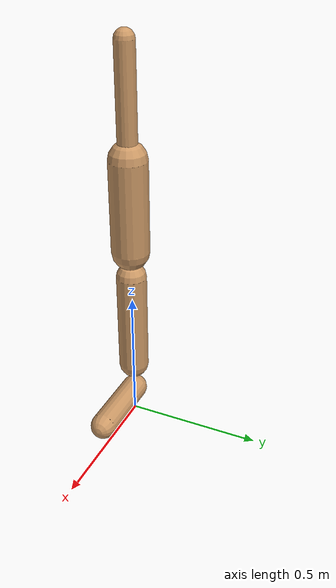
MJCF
<mujoco model="walker2d">
  <compiler angle="degree" coordinate="global" inertiafromgeom="true" />
  <default>
    <joint armature="0.01" damping=".1" limited="true" />
    <geom conaffinity="0" condim="3" contype="1" density="1000" friction="0.8 .1 .1" rgba="0.8 0.6 .4 1" />
  </default>
  <option integrator="RK4" timestep="0.002" />
  <worldbody>

    <body name="torso" pos="0 0 -0.22423716229651497">
      <joint armature="0" axis="1 0 0" damping="0" limited="false" name="ignorex" pos="0 0 0" stiffness="0" type="slide" />
      <joint armature="0" axis="0 0 1" damping="0" limited="false" name="ignorez" pos="0 0 0" ref="1.25" stiffness="0" type="slide" />
      <joint armature="0" axis="0 1 0" damping="0" limited="false" name="ignorey" pos="0 0 0" stiffness="0" type="hinge" />
      <geom fromto="0 0 1.45 0 0 1.05" name="torso_geom" size="0.03587772662880603" type="capsule" />
      <body name="thigh">
        <joint axis="0 -1 0" name="thigh_joint" pos="0 0 1.05" range="-150 0" type="hinge" />
        <geom fromto="0.0 0.0 1.05 0.0 0.0 0.706217603193086" name="thigh_geom" size="0.07031376017814335" type="capsule" />
        <body name="leg" pos="0.0 0.0 0.10621760319308604">
          <joint axis="0 -1 0" name="leg_joint" pos="0 0 0.6" range="-150 0" type="hinge" />
          <geom fromto="0.0 0.0 0.6 0.0 0.0 0.21801955910342893" name="leg_geom" size="0.05625100814251468" type="capsule" />
          <body name="foot" pos="0.0 0.0 0.11801955910342893">
            <joint axis="0 -1 0" name="foot_joint" pos="0 0 0.1" range="-45 45" type="hinge" />
            <geom fromto="-0.0 0.0 0.1 0.25656580119582967 0.0 0.1" name="foot_geom" size="0.04793809420828908" type="capsule" />
          </body>
        </body>
      </body>

      <body name="thigh_left">
        <joint axis="0 -1 0" name="thigh_left_joint" pos="0 0 1.05" range="-150 0" type="hinge" />
        <geom fromto="0.0 0.0 1.05 0.0 0.0 0.706217603193086" name="thigh_left_geom" rgba=".7 .3 .6 1" size="0.07031376017814335" type="capsule" />
        <body name="leg_left" pos="0.0 0.0 0.10621760319308604">
          <joint axis="0 -1 0" name="leg_left_joint" pos="0 0 0.6" range="-150 0" type="hinge" />
          <geom fromto="0.0 0.0 0.6 0.0 0.0 0.21801955910342893" name="leg_left_geom" rgba=".7 .3 .6 1" size="0.05625100814251468" type="capsule" />
          <body name="foot_left" pos="0.0 0.0 0.11801955910342893">
            <joint axis="0 -1 0" name="foot_left_joint" pos="0 0 0.1" range="-45 45" type="hinge" />
            <geom fromto="-0.0 0.0 0.1 0.25656580119582967 0.0 0.1" name="foot_left_geom" rgba=".7 .3 .6 1" size="0.04793809420828908" type="capsule" />
          </body>
        </body>
      </body>
    </body>
  </worldbody>
  <actuator>

    <motor ctrllimited="true" ctrlrange="-1.0 1.0" gear="100" joint="thigh_joint" />
    <motor ctrllimited="true" ctrlrange="-1.0 1.0" gear="100" joint="leg_joint" />
    <motor ctrllimited="true" ctrlrange="-1.0 1.0" gear="100" joint="foot_joint" />
    <motor ctrllimited="true" ctrlrange="-1.0 1.0" gear="100" joint="thigh_left_joint" />
    <motor ctrllimited="true" ctrlrange="-1.0 1.0" gear="100" joint="leg_left_joint" />
    <motor ctrllimited="true" ctrlrange="-1.0 1.0" gear="100" joint="foot_left_joint" />

  </actuator>
</mujoco>
